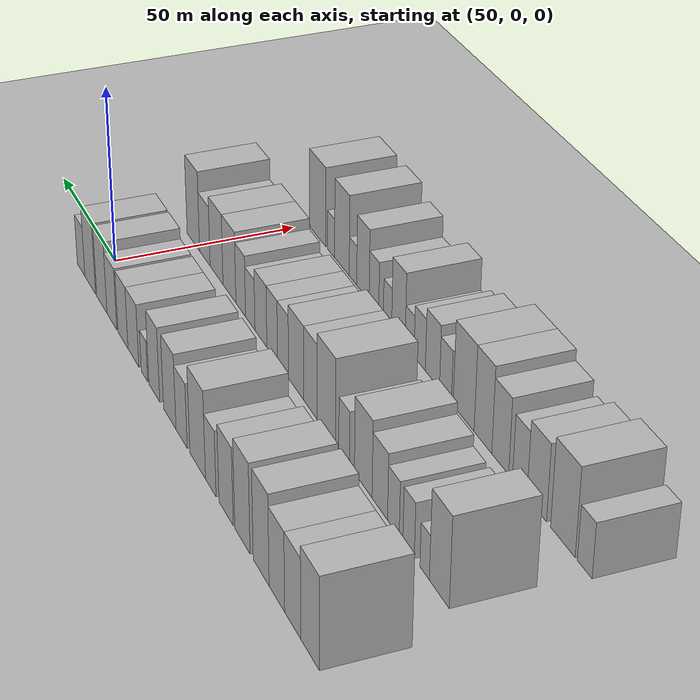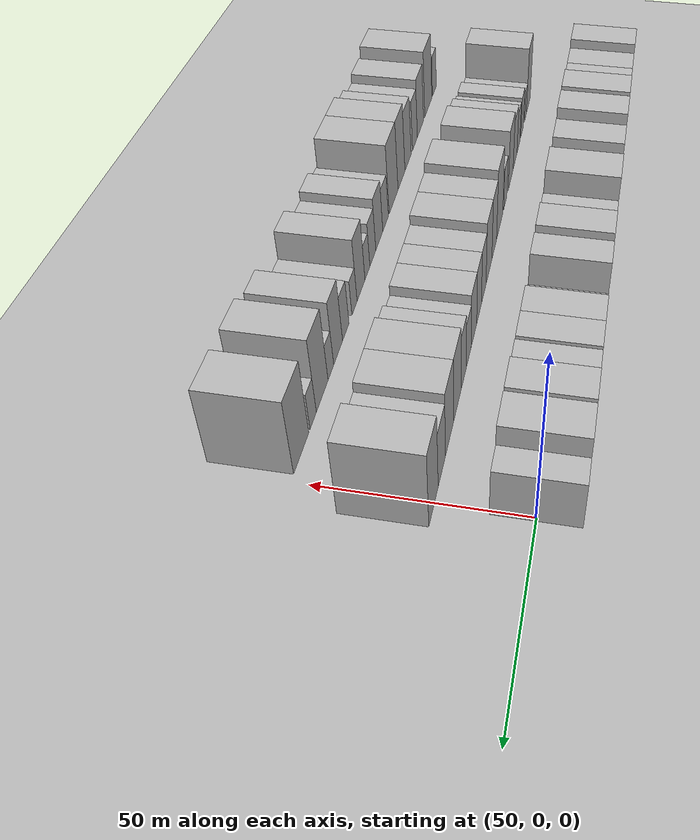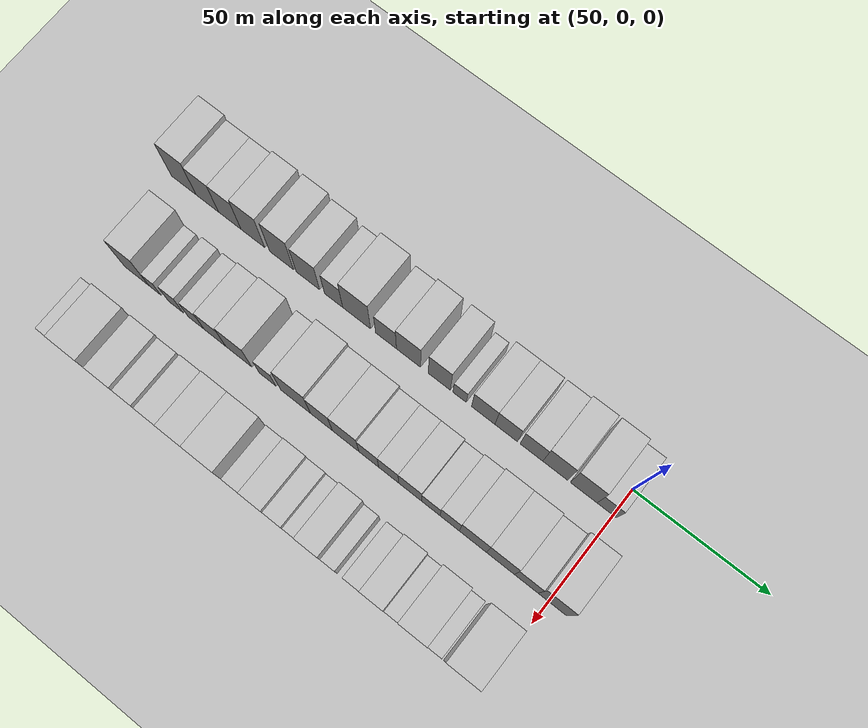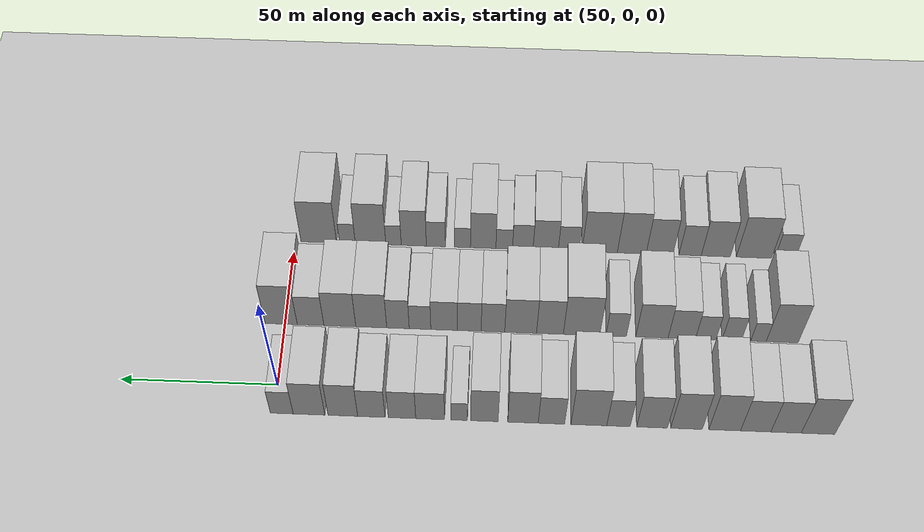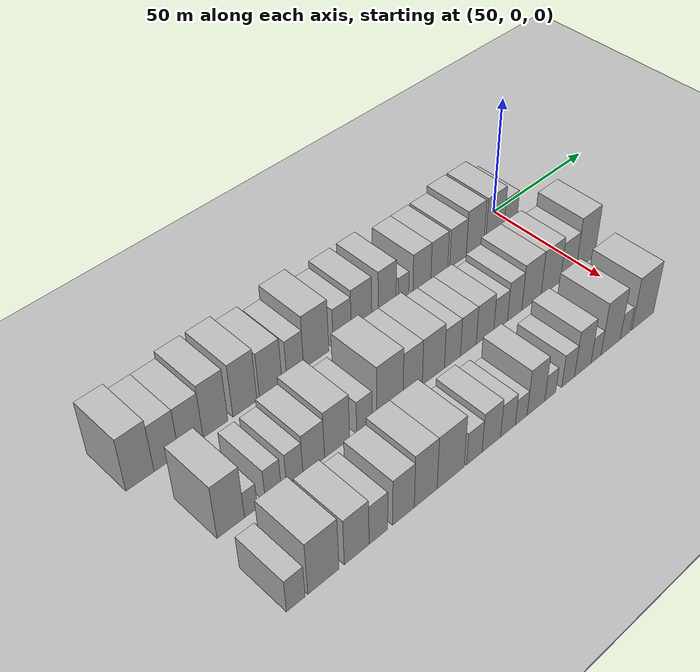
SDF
<sdf version="1.6">
 <world name="default">
  <include><name>ground_plane_1</name><uri>model://HANNAS_ground_plane</uri></include>
  <include>
   <name>ground_plane_2</name>
   <uri>model://HANNAS_ground_plane</uri>
   <pose>100 0 0  0 0 0</pose>
  </include>
  <model name="building_20">
   <static>1</static>
   <pose>50.0000 -168.9463 0 0.000000 0.000000 0.000000</pose>
   <link name="link">
    <pose>0 0 12.00 0 0 0</pose>
    <collision name="collision"><geometry><box><size>20.0000 10.3767 24.0000</size></box></geometry></collision>
    <visual name="visual">
     <cast_shadows>0</cast_shadows>
     <geometry><box><size>20.0000 10.3767 24.0000</size></box></geometry>
     <material>
      <script>
       <uri>model://HANNAS_wall/materials/scripts</uri>
       <uri>model://HANNAS_wall/materials/textures</uri>
       <name>vrc/HANNAS_wall</name>
      </script>
     </material>
    </visual>
   </link>
  </model>
  <model name="building_21">
   <static>1</static>
   <pose>50.0000 -159.0779 0 0.000000 0.000000 0.000000</pose>
   <link name="link">
    <pose>0 0 10.50 0 0 0</pose>
    <collision name="collision"><geometry><box><size>20.0000 9.3601 21.0000</size></box></geometry></collision>
    <visual name="visual">
     <cast_shadows>0</cast_shadows>
     <geometry><box><size>20.0000 9.3601 21.0000</size></box></geometry>
     <material>
      <script>
       <uri>model://HANNAS_wall/materials/scripts</uri>
       <uri>model://HANNAS_wall/materials/textures</uri>
       <name>vrc/HANNAS_wall</name>
      </script>
     </material>
    </visual>
   </link>
  </model>
  <model name="building_22">
   <static>1</static>
   <pose>50.0000 -149.7265 0 0.000000 0.000000 0.000000</pose>
   <link name="link">
    <pose>0 0 10.50 0 0 0</pose>
    <collision name="collision"><geometry><box><size>20.0000 9.3427 21.0000</size></box></geometry></collision>
    <visual name="visual">
     <cast_shadows>0</cast_shadows>
     <geometry><box><size>20.0000 9.3427 21.0000</size></box></geometry>
     <material>
      <script>
       <uri>model://HANNAS_wall/materials/scripts</uri>
       <uri>model://HANNAS_wall/materials/textures</uri>
       <name>vrc/HANNAS_wall</name>
      </script>
     </material>
    </visual>
   </link>
  </model>
  <model name="building_23">
   <static>1</static>
   <pose>50.0000 -140.1592 0 0.000000 0.000000 0.000000</pose>
   <link name="link">
    <pose>0 0 12.00 0 0 0</pose>
    <collision name="collision"><geometry><box><size>20.0000 9.7919 24.0000</size></box></geometry></collision>
    <visual name="visual">
     <cast_shadows>0</cast_shadows>
     <geometry><box><size>20.0000 9.7919 24.0000</size></box></geometry>
     <material>
      <script>
       <uri>model://HANNAS_wall/materials/scripts</uri>
       <uri>model://HANNAS_wall/materials/textures</uri>
       <name>vrc/HANNAS_wall</name>
      </script>
     </material>
    </visual>
   </link>
  </model>
  <model name="building_24">
   <static>1</static>
   <pose>50.0000 -128.3486 0 0.000000 0.000000 0.000000</pose>
   <link name="link">
    <pose>0 0 12.00 0 0 0</pose>
    <collision name="collision"><geometry><box><size>20.0000 9.8294 24.0000</size></box></geometry></collision>
    <visual name="visual">
     <cast_shadows>0</cast_shadows>
     <geometry><box><size>20.0000 9.8294 24.0000</size></box></geometry>
     <material>
      <script>
       <uri>model://HANNAS_wall/materials/scripts</uri>
       <uri>model://HANNAS_wall/materials/textures</uri>
       <name>vrc/HANNAS_wall</name>
      </script>
     </material>
    </visual>
   </link>
  </model>
  <model name="building_25">
   <static>1</static>
   <pose>50.0000 -117.6732 0 0.000000 0.000000 0.000000</pose>
   <link name="link">
    <pose>0 0 10.50 0 0 0</pose>
    <collision name="collision"><geometry><box><size>20.0000 9.5214 21.0000</size></box></geometry></collision>
    <visual name="visual">
     <cast_shadows>0</cast_shadows>
     <geometry><box><size>20.0000 9.5214 21.0000</size></box></geometry>
     <material>
      <script>
       <uri>model://HANNAS_wall/materials/scripts</uri>
       <uri>model://HANNAS_wall/materials/textures</uri>
       <name>vrc/HANNAS_wall</name>
      </script>
     </material>
    </visual>
   </link>
  </model>
  <model name="building_26">
   <static>1</static>
   <pose>50.0000 -107.2792 0 0.000000 0.000000 0.000000</pose>
   <link name="link">
    <pose>0 0 9.00 0 0 0</pose>
    <collision name="collision"><geometry><box><size>20.0000 7.2665 18.0000</size></box></geometry></collision>
    <visual name="visual">
     <cast_shadows>0</cast_shadows>
     <geometry><box><size>20.0000 7.2665 18.0000</size></box></geometry>
     <material>
      <script>
       <uri>model://HANNAS_wall/materials/scripts</uri>
       <uri>model://HANNAS_wall/materials/textures</uri>
       <name>vrc/HANNAS_wall</name>
      </script>
     </material>
    </visual>
   </link>
  </model>
  <model name="building_27">
   <static>1</static>
   <pose>50.0000 -98.1039 0 0.000000 0.000000 0.000000</pose>
   <link name="link">
    <pose>0 0 12.00 0 0 0</pose>
    <collision name="collision"><geometry><box><size>20.0000 11.0840 24.0000</size></box></geometry></collision>
    <visual name="visual">
     <cast_shadows>0</cast_shadows>
     <geometry><box><size>20.0000 11.0840 24.0000</size></box></geometry>
     <material>
      <script>
       <uri>model://HANNAS_wall/materials/scripts</uri>
       <uri>model://HANNAS_wall/materials/textures</uri>
       <name>vrc/HANNAS_wall</name>
      </script>
     </material>
    </visual>
   </link>
  </model>
  <model name="building_28">
   <static>1</static>
   <pose>50.0000 -86.4578 0 0.000000 0.000000 0.000000</pose>
   <link name="link">
    <pose>0 0 9.00 0 0 0</pose>
    <collision name="collision"><geometry><box><size>20.0000 8.2081 18.0000</size></box></geometry></collision>
    <visual name="visual">
     <cast_shadows>0</cast_shadows>
     <geometry><box><size>20.0000 8.2081 18.0000</size></box></geometry>
     <material>
      <script>
       <uri>model://HANNAS_wall/materials/scripts</uri>
       <uri>model://HANNAS_wall/materials/textures</uri>
       <name>vrc/HANNAS_wall</name>
      </script>
     </material>
    </visual>
   </link>
  </model>
  <model name="building_29">
   <static>1</static>
   <pose>50.0000 -77.6245 0 0.000000 0.000000 0.000000</pose>
   <link name="link">
    <pose>0 0 10.50 0 0 0</pose>
    <collision name="collision"><geometry><box><size>20.0000 9.4585 21.0000</size></box></geometry></collision>
    <visual name="visual">
     <cast_shadows>0</cast_shadows>
     <geometry><box><size>20.0000 9.4585 21.0000</size></box></geometry>
     <material>
      <script>
       <uri>model://HANNAS_wall/materials/scripts</uri>
       <uri>model://HANNAS_wall/materials/textures</uri>
       <name>vrc/HANNAS_wall</name>
      </script>
     </material>
    </visual>
   </link>
  </model>
  <model name="building_30">
   <static>1</static>
   <pose>50.0000 -65.6225 0 0.000000 0.000000 0.000000</pose>
   <link name="link">
    <pose>0 0 10.50 0 0 0</pose>
    <collision name="collision"><geometry><box><size>20.0000 8.5455 21.0000</size></box></geometry></collision>
    <visual name="visual">
     <cast_shadows>0</cast_shadows>
     <geometry><box><size>20.0000 8.5455 21.0000</size></box></geometry>
     <material>
      <script>
       <uri>model://HANNAS_wall/materials/scripts</uri>
       <uri>model://HANNAS_wall/materials/textures</uri>
       <name>vrc/HANNAS_wall</name>
      </script>
     </material>
    </visual>
   </link>
  </model>
  <model name="building_31">
   <static>1</static>
   <pose>50.0000 -57.7851 0 0.000000 0.000000 0.000000</pose>
   <link name="link">
    <pose>0 0 6.00 0 0 0</pose>
    <collision name="collision"><geometry><box><size>20.0000 5.1292 12.0000</size></box></geometry></collision>
    <visual name="visual">
     <cast_shadows>0</cast_shadows>
     <geometry><box><size>20.0000 5.1292 12.0000</size></box></geometry>
     <material>
      <script>
       <uri>model://HANNAS_wall/materials/scripts</uri>
       <uri>model://HANNAS_wall/materials/textures</uri>
       <name>vrc/HANNAS_wall</name>
      </script>
     </material>
    </visual>
   </link>
  </model>
  <model name="building_32">
   <static>1</static>
   <pose>50.0000 -48.7332 0 0.000000 0.000000 0.000000</pose>
   <link name="link">
    <pose>0 0 9.00 0 0 0</pose>
    <collision name="collision"><geometry><box><size>20.0000 8.9747 18.0000</size></box></geometry></collision>
    <visual name="visual">
     <cast_shadows>0</cast_shadows>
     <geometry><box><size>20.0000 8.9747 18.0000</size></box></geometry>
     <material>
      <script>
       <uri>model://HANNAS_wall/materials/scripts</uri>
       <uri>model://HANNAS_wall/materials/textures</uri>
       <name>vrc/HANNAS_wall</name>
      </script>
     </material>
    </visual>
   </link>
  </model>
  <model name="building_33">
   <static>1</static>
   <pose>50.0000 -39.9709 0 0.000000 0.000000 0.000000</pose>
   <link name="link">
    <pose>0 0 9.00 0 0 0</pose>
    <collision name="collision"><geometry><box><size>20.0000 8.5499 18.0000</size></box></geometry></collision>
    <visual name="visual">
     <cast_shadows>0</cast_shadows>
     <geometry><box><size>20.0000 8.5499 18.0000</size></box></geometry>
     <material>
      <script>
       <uri>model://HANNAS_wall/materials/scripts</uri>
       <uri>model://HANNAS_wall/materials/textures</uri>
       <name>vrc/HANNAS_wall</name>
      </script>
     </material>
    </visual>
   </link>
  </model>
  <model name="building_34">
   <static>1</static>
   <pose>50.0000 -30.4042 0 0.000000 0.000000 0.000000</pose>
   <link name="link">
    <pose>0 0 9.00 0 0 0</pose>
    <collision name="collision"><geometry><box><size>20.0000 8.5835 18.0000</size></box></geometry></collision>
    <visual name="visual">
     <cast_shadows>0</cast_shadows>
     <geometry><box><size>20.0000 8.5835 18.0000</size></box></geometry>
     <material>
      <script>
       <uri>model://HANNAS_wall/materials/scripts</uri>
       <uri>model://HANNAS_wall/materials/textures</uri>
       <name>vrc/HANNAS_wall</name>
      </script>
     </material>
    </visual>
   </link>
  </model>
  <model name="building_35">
   <static>1</static>
   <pose>50.0000 -21.4919 0 0.000000 0.000000 0.000000</pose>
   <link name="link">
    <pose>0 0 10.50 0 0 0</pose>
    <collision name="collision"><geometry><box><size>20.0000 9.2410 21.0000</size></box></geometry></collision>
    <visual name="visual">
     <cast_shadows>0</cast_shadows>
     <geometry><box><size>20.0000 9.2410 21.0000</size></box></geometry>
     <material>
      <script>
       <uri>model://HANNAS_wall/materials/scripts</uri>
       <uri>model://HANNAS_wall/materials/textures</uri>
       <name>vrc/HANNAS_wall</name>
      </script>
     </material>
    </visual>
   </link>
  </model>
  <model name="building_36">
   <static>1</static>
   <pose>50.0000 -10.9206 0 0.000000 0.000000 0.000000</pose>
   <link name="link">
    <pose>0 0 10.50 0 0 0</pose>
    <collision name="collision"><geometry><box><size>20.0000 9.9016 21.0000</size></box></geometry></collision>
    <visual name="visual">
     <cast_shadows>0</cast_shadows>
     <geometry><box><size>20.0000 9.9016 21.0000</size></box></geometry>
     <material>
      <script>
       <uri>model://HANNAS_wall/materials/scripts</uri>
       <uri>model://HANNAS_wall/materials/textures</uri>
       <name>vrc/HANNAS_wall</name>
      </script>
     </material>
    </visual>
   </link>
  </model>
  <model name="building_37">
   <static>1</static>
   <pose>50.0000 -2.4017 0 0.000000 0.000000 0.000000</pose>
   <link name="link">
    <pose>0 0 7.50 0 0 0</pose>
    <collision name="collision"><geometry><box><size>20.0000 7.1364 15.0000</size></box></geometry></collision>
    <visual name="visual">
     <cast_shadows>0</cast_shadows>
     <geometry><box><size>20.0000 7.1364 15.0000</size></box></geometry>
     <material>
      <script>
       <uri>model://HANNAS_wall/materials/scripts</uri>
       <uri>model://HANNAS_wall/materials/textures</uri>
       <name>vrc/HANNAS_wall</name>
      </script>
     </material>
    </visual>
   </link>
  </model>
  <model name="building_96">
   <static>1</static>
   <pose>82.0000 -160.4368 0 0.000000 0.000000 0.000000</pose>
   <link name="link">
    <pose>0 0 12.00 0 0 0</pose>
    <collision name="collision"><geometry><box><size>20.0000 10.2130 24.0000</size></box></geometry></collision>
    <visual name="visual">
     <cast_shadows>0</cast_shadows>
     <geometry><box><size>20.0000 10.2130 24.0000</size></box></geometry>
     <material>
      <script>
       <uri>model://HANNAS_wall/materials/scripts</uri>
       <uri>model://HANNAS_wall/materials/textures</uri>
       <name>vrc/HANNAS_wall</name>
      </script>
     </material>
    </visual>
   </link>
  </model>
  <model name="building_97">
   <static>1</static>
   <pose>82.0000 -152.8462 0 0.000000 0.000000 0.000000</pose>
   <link name="link">
    <pose>0 0 6.00 0 0 0</pose>
    <collision name="collision"><geometry><box><size>20.0000 4.9683 12.0000</size></box></geometry></collision>
    <visual name="visual">
     <cast_shadows>0</cast_shadows>
     <geometry><box><size>20.0000 4.9683 12.0000</size></box></geometry>
     <material>
      <script>
       <uri>model://HANNAS_wall/materials/scripts</uri>
       <uri>model://HANNAS_wall/materials/textures</uri>
       <name>vrc/HANNAS_wall</name>
      </script>
     </material>
    </visual>
   </link>
  </model>
  <model name="building_98">
   <static>1</static>
   <pose>82.0000 -144.2626 0 0.000000 0.000000 0.000000</pose>
   <link name="link">
    <pose>0 0 7.50 0 0 0</pose>
    <collision name="collision"><geometry><box><size>20.0000 6.1988 15.0000</size></box></geometry></collision>
    <visual name="visual">
     <cast_shadows>0</cast_shadows>
     <geometry><box><size>20.0000 6.1988 15.0000</size></box></geometry>
     <material>
      <script>
       <uri>model://HANNAS_wall/materials/scripts</uri>
       <uri>model://HANNAS_wall/materials/textures</uri>
       <name>vrc/HANNAS_wall</name>
      </script>
     </material>
    </visual>
   </link>
  </model>
  <model name="building_99">
   <static>1</static>
   <pose>82.0000 -135.8940 0 0.000000 0.000000 0.000000</pose>
   <link name="link">
    <pose>0 0 7.50 0 0 0</pose>
    <collision name="collision"><geometry><box><size>20.0000 6.5384 15.0000</size></box></geometry></collision>
    <visual name="visual">
     <cast_shadows>0</cast_shadows>
     <geometry><box><size>20.0000 6.5384 15.0000</size></box></geometry>
     <material>
      <script>
       <uri>model://HANNAS_wall/materials/scripts</uri>
       <uri>model://HANNAS_wall/materials/textures</uri>
       <name>vrc/HANNAS_wall</name>
      </script>
     </material>
    </visual>
   </link>
  </model>
  <model name="building_100">
   <static>1</static>
   <pose>82.0000 -128.2202 0 0.000000 0.000000 0.000000</pose>
   <link name="link">
    <pose>0 0 9.00 0 0 0</pose>
    <collision name="collision"><geometry><box><size>20.0000 8.8092 18.0000</size></box></geometry></collision>
    <visual name="visual">
     <cast_shadows>0</cast_shadows>
     <geometry><box><size>20.0000 8.8092 18.0000</size></box></geometry>
     <material>
      <script>
       <uri>model://HANNAS_wall/materials/scripts</uri>
       <uri>model://HANNAS_wall/materials/textures</uri>
       <name>vrc/HANNAS_wall</name>
      </script>
     </material>
    </visual>
   </link>
  </model>
  <model name="building_101">
   <static>1</static>
   <pose>82.0000 -118.6118 0 0.000000 0.000000 0.000000</pose>
   <link name="link">
    <pose>0 0 10.50 0 0 0</pose>
    <collision name="collision"><geometry><box><size>20.0000 10.4074 21.0000</size></box></geometry></collision>
    <visual name="visual">
     <cast_shadows>0</cast_shadows>
     <geometry><box><size>20.0000 10.4074 21.0000</size></box></geometry>
     <material>
      <script>
       <uri>model://HANNAS_wall/materials/scripts</uri>
       <uri>model://HANNAS_wall/materials/textures</uri>
       <name>vrc/HANNAS_wall</name>
      </script>
     </material>
    </visual>
   </link>
  </model>
  <model name="building_102">
   <static>1</static>
   <pose>82.0000 -107.1139 0 0.000000 0.000000 0.000000</pose>
   <link name="link">
    <pose>0 0 7.50 0 0 0</pose>
    <collision name="collision"><geometry><box><size>20.0000 6.5884 15.0000</size></box></geometry></collision>
    <visual name="visual">
     <cast_shadows>0</cast_shadows>
     <geometry><box><size>20.0000 6.5884 15.0000</size></box></geometry>
     <material>
      <script>
       <uri>model://HANNAS_wall/materials/scripts</uri>
       <uri>model://HANNAS_wall/materials/textures</uri>
       <name>vrc/HANNAS_wall</name>
      </script>
     </material>
    </visual>
   </link>
  </model>
  <model name="building_103">
   <static>1</static>
   <pose>82.0000 -95.9659 0 0.000000 0.000000 0.000000</pose>
   <link name="link">
    <pose>0 0 12.00 0 0 0</pose>
    <collision name="collision"><geometry><box><size>20.0000 11.7077 24.0000</size></box></geometry></collision>
    <visual name="visual">
     <cast_shadows>0</cast_shadows>
     <geometry><box><size>20.0000 11.7077 24.0000</size></box></geometry>
     <material>
      <script>
       <uri>model://HANNAS_wall/materials/scripts</uri>
       <uri>model://HANNAS_wall/materials/textures</uri>
       <name>vrc/HANNAS_wall</name>
      </script>
     </material>
    </visual>
   </link>
  </model>
  <model name="building_104">
   <static>1</static>
   <pose>82.0000 -85.7758 0 0.000000 0.000000 0.000000</pose>
   <link name="link">
    <pose>0 0 10.50 0 0 0</pose>
    <collision name="collision"><geometry><box><size>20.0000 8.6725 21.0000</size></box></geometry></collision>
    <visual name="visual">
     <cast_shadows>0</cast_shadows>
     <geometry><box><size>20.0000 8.6725 21.0000</size></box></geometry>
     <material>
      <script>
       <uri>model://HANNAS_wall/materials/scripts</uri>
       <uri>model://HANNAS_wall/materials/textures</uri>
       <name>vrc/HANNAS_wall</name>
      </script>
     </material>
    </visual>
   </link>
  </model>
  <model name="building_105">
   <static>1</static>
   <pose>82.0000 -76.3081 0 0.000000 0.000000 0.000000</pose>
   <link name="link">
    <pose>0 0 10.50 0 0 0</pose>
    <collision name="collision"><geometry><box><size>20.0000 10.2629 21.0000</size></box></geometry></collision>
    <visual name="visual">
     <cast_shadows>0</cast_shadows>
     <geometry><box><size>20.0000 10.2629 21.0000</size></box></geometry>
     <material>
      <script>
       <uri>model://HANNAS_wall/materials/scripts</uri>
       <uri>model://HANNAS_wall/materials/textures</uri>
       <name>vrc/HANNAS_wall</name>
      </script>
     </material>
    </visual>
   </link>
  </model>
  <model name="building_106">
   <static>1</static>
   <pose>82.0000 -67.3694 0 0.000000 0.000000 0.000000</pose>
   <link name="link">
    <pose>0 0 9.00 0 0 0</pose>
    <collision name="collision"><geometry><box><size>20.0000 7.6144 18.0000</size></box></geometry></collision>
    <visual name="visual">
     <cast_shadows>0</cast_shadows>
     <geometry><box><size>20.0000 7.6144 18.0000</size></box></geometry>
     <material>
      <script>
       <uri>model://HANNAS_wall/materials/scripts</uri>
       <uri>model://HANNAS_wall/materials/textures</uri>
       <name>vrc/HANNAS_wall</name>
      </script>
     </material>
    </visual>
   </link>
  </model>
  <model name="building_107">
   <static>1</static>
   <pose>82.0000 -59.7452 0 0.000000 0.000000 0.000000</pose>
   <link name="link">
    <pose>0 0 9.00 0 0 0</pose>
    <collision name="collision"><geometry><box><size>20.0000 7.6341 18.0000</size></box></geometry></collision>
    <visual name="visual">
     <cast_shadows>0</cast_shadows>
     <geometry><box><size>20.0000 7.6341 18.0000</size></box></geometry>
     <material>
      <script>
       <uri>model://HANNAS_wall/materials/scripts</uri>
       <uri>model://HANNAS_wall/materials/textures</uri>
       <name>vrc/HANNAS_wall</name>
      </script>
     </material>
    </visual>
   </link>
  </model>
  <model name="building_108">
   <static>1</static>
   <pose>82.0000 -51.6048 0 0.000000 0.000000 0.000000</pose>
   <link name="link">
    <pose>0 0 9.00 0 0 0</pose>
    <collision name="collision"><geometry><box><size>20.0000 8.6466 18.0000</size></box></geometry></collision>
    <visual name="visual">
     <cast_shadows>0</cast_shadows>
     <geometry><box><size>20.0000 8.6466 18.0000</size></box></geometry>
     <material>
      <script>
       <uri>model://HANNAS_wall/materials/scripts</uri>
       <uri>model://HANNAS_wall/materials/textures</uri>
       <name>vrc/HANNAS_wall</name>
      </script>
     </material>
    </visual>
   </link>
  </model>
  <model name="building_109">
   <static>1</static>
   <pose>82.0000 -43.7834 0 0.000000 0.000000 0.000000</pose>
   <link name="link">
    <pose>0 0 7.50 0 0 0</pose>
    <collision name="collision"><geometry><box><size>20.0000 6.9962 15.0000</size></box></geometry></collision>
    <visual name="visual">
     <cast_shadows>0</cast_shadows>
     <geometry><box><size>20.0000 6.9962 15.0000</size></box></geometry>
     <material>
      <script>
       <uri>model://HANNAS_wall/materials/scripts</uri>
       <uri>model://HANNAS_wall/materials/textures</uri>
       <name>vrc/HANNAS_wall</name>
      </script>
     </material>
    </visual>
   </link>
  </model>
  <model name="building_110">
   <static>1</static>
   <pose>82.0000 -36.6419 0 0.000000 0.000000 0.000000</pose>
   <link name="link">
    <pose>0 0 9.00 0 0 0</pose>
    <collision name="collision"><geometry><box><size>20.0000 7.2868 18.0000</size></box></geometry></collision>
    <visual name="visual">
     <cast_shadows>0</cast_shadows>
     <geometry><box><size>20.0000 7.2868 18.0000</size></box></geometry>
     <material>
      <script>
       <uri>model://HANNAS_wall/materials/scripts</uri>
       <uri>model://HANNAS_wall/materials/textures</uri>
       <name>vrc/HANNAS_wall</name>
      </script>
     </material>
    </visual>
   </link>
  </model>
  <model name="building_111">
   <static>1</static>
   <pose>82.0000 -27.9829 0 0.000000 0.000000 0.000000</pose>
   <link name="link">
    <pose>0 0 10.50 0 0 0</pose>
    <collision name="collision"><geometry><box><size>20.0000 10.0311 21.0000</size></box></geometry></collision>
    <visual name="visual">
     <cast_shadows>0</cast_shadows>
     <geometry><box><size>20.0000 10.0311 21.0000</size></box></geometry>
     <material>
      <script>
       <uri>model://HANNAS_wall/materials/scripts</uri>
       <uri>model://HANNAS_wall/materials/textures</uri>
       <name>vrc/HANNAS_wall</name>
      </script>
     </material>
    </visual>
   </link>
  </model>
  <model name="building_112">
   <static>1</static>
   <pose>82.0000 -17.7882 0 0.000000 0.000000 0.000000</pose>
   <link name="link">
    <pose>0 0 10.50 0 0 0</pose>
    <collision name="collision"><geometry><box><size>20.0000 10.3584 21.0000</size></box></geometry></collision>
    <visual name="visual">
     <cast_shadows>0</cast_shadows>
     <geometry><box><size>20.0000 10.3584 21.0000</size></box></geometry>
     <material>
      <script>
       <uri>model://HANNAS_wall/materials/scripts</uri>
       <uri>model://HANNAS_wall/materials/textures</uri>
       <name>vrc/HANNAS_wall</name>
      </script>
     </material>
    </visual>
   </link>
  </model>
  <model name="building_113">
   <static>1</static>
   <pose>82.0000 -8.2846 0 0.000000 0.000000 0.000000</pose>
   <link name="link">
    <pose>0 0 9.00 0 0 0</pose>
    <collision name="collision"><geometry><box><size>20.0000 8.6489 18.0000</size></box></geometry></collision>
    <visual name="visual">
     <cast_shadows>0</cast_shadows>
     <geometry><box><size>20.0000 8.6489 18.0000</size></box></geometry>
     <material>
      <script>
       <uri>model://HANNAS_wall/materials/scripts</uri>
       <uri>model://HANNAS_wall/materials/textures</uri>
       <name>vrc/HANNAS_wall</name>
      </script>
     </material>
    </visual>
   </link>
  </model>
  <model name="building_114">
   <static>1</static>
   <pose>82.0000 1.2791 0 0.000000 0.000000 0.000000</pose>
   <link name="link">
    <pose>0 0 12.00 0 0 0</pose>
    <collision name="collision"><geometry><box><size>20.0000 10.4783 24.0000</size></box></geometry></collision>
    <visual name="visual">
     <cast_shadows>0</cast_shadows>
     <geometry><box><size>20.0000 10.4783 24.0000</size></box></geometry>
     <material>
      <script>
       <uri>model://HANNAS_wall/materials/scripts</uri>
       <uri>model://HANNAS_wall/materials/textures</uri>
       <name>vrc/HANNAS_wall</name>
      </script>
     </material>
    </visual>
   </link>
  </model>
  <model name="building_168">
   <static>1</static>
   <pose>114.0000 -163.8801 0 0.000000 0.000000 0.000000</pose>
   <link name="link">
    <pose>0 0 7.50 0 0 0</pose>
    <collision name="collision"><geometry><box><size>20.0000 6.8053 15.0000</size></box></geometry></collision>
    <visual name="visual">
     <cast_shadows>0</cast_shadows>
     <geometry><box><size>20.0000 6.8053 15.0000</size></box></geometry>
     <material>
      <script>
       <uri>model://HANNAS_wall/materials/scripts</uri>
       <uri>model://HANNAS_wall/materials/textures</uri>
       <name>vrc/HANNAS_wall</name>
      </script>
     </material>
    </visual>
   </link>
  </model>
  <model name="building_169">
   <static>1</static>
   <pose>114.0000 -153.6069 0 0.000000 0.000000 0.000000</pose>
   <link name="link">
    <pose>0 0 12.00 0 0 0</pose>
    <collision name="collision"><geometry><box><size>20.0000 11.7410 24.0000</size></box></geometry></collision>
    <visual name="visual">
     <cast_shadows>0</cast_shadows>
     <geometry><box><size>20.0000 11.7410 24.0000</size></box></geometry>
     <material>
      <script>
       <uri>model://HANNAS_wall/materials/scripts</uri>
       <uri>model://HANNAS_wall/materials/textures</uri>
       <name>vrc/HANNAS_wall</name>
      </script>
     </material>
    </visual>
   </link>
  </model>
  <model name="building_170">
   <static>1</static>
   <pose>114.0000 -140.8920 0 0.000000 0.000000 0.000000</pose>
   <link name="link">
    <pose>0 0 10.50 0 0 0</pose>
    <collision name="collision"><geometry><box><size>20.0000 9.6889 21.0000</size></box></geometry></collision>
    <visual name="visual">
     <cast_shadows>0</cast_shadows>
     <geometry><box><size>20.0000 9.6889 21.0000</size></box></geometry>
     <material>
      <script>
       <uri>model://HANNAS_wall/materials/scripts</uri>
       <uri>model://HANNAS_wall/materials/textures</uri>
       <name>vrc/HANNAS_wall</name>
      </script>
     </material>
    </visual>
   </link>
  </model>
  <model name="building_171">
   <static>1</static>
   <pose>114.0000 -132.3316 0 0.000000 0.000000 0.000000</pose>
   <link name="link">
    <pose>0 0 9.00 0 0 0</pose>
    <collision name="collision"><geometry><box><size>20.0000 7.4318 18.0000</size></box></geometry></collision>
    <visual name="visual">
     <cast_shadows>0</cast_shadows>
     <geometry><box><size>20.0000 7.4318 18.0000</size></box></geometry>
     <material>
      <script>
       <uri>model://HANNAS_wall/materials/scripts</uri>
       <uri>model://HANNAS_wall/materials/textures</uri>
       <name>vrc/HANNAS_wall</name>
      </script>
     </material>
    </visual>
   </link>
  </model>
  <model name="building_172">
   <static>1</static>
   <pose>114.0000 -122.1465 0 0.000000 0.000000 0.000000</pose>
   <link name="link">
    <pose>0 0 10.50 0 0 0</pose>
    <collision name="collision"><geometry><box><size>20.0000 8.9383 21.0000</size></box></geometry></collision>
    <visual name="visual">
     <cast_shadows>0</cast_shadows>
     <geometry><box><size>20.0000 8.9383 21.0000</size></box></geometry>
     <material>
      <script>
       <uri>model://HANNAS_wall/materials/scripts</uri>
       <uri>model://HANNAS_wall/materials/textures</uri>
       <name>vrc/HANNAS_wall</name>
      </script>
     </material>
    </visual>
   </link>
  </model>
  <model name="building_173">
   <static>1</static>
   <pose>114.0000 -112.8626 0 0.000000 0.000000 0.000000</pose>
   <link name="link">
    <pose>0 0 12.00 0 0 0</pose>
    <collision name="collision"><geometry><box><size>20.0000 9.6297 24.0000</size></box></geometry></collision>
    <visual name="visual">
     <cast_shadows>0</cast_shadows>
     <geometry><box><size>20.0000 9.6297 24.0000</size></box></geometry>
     <material>
      <script>
       <uri>model://HANNAS_wall/materials/scripts</uri>
       <uri>model://HANNAS_wall/materials/textures</uri>
       <name>vrc/HANNAS_wall</name>
      </script>
     </material>
    </visual>
   </link>
  </model>
  <model name="building_174">
   <static>1</static>
   <pose>114.0000 -102.1430 0 0.000000 0.000000 0.000000</pose>
   <link name="link">
    <pose>0 0 12.00 0 0 0</pose>
    <collision name="collision"><geometry><box><size>20.0000 11.8095 24.0000</size></box></geometry></collision>
    <visual name="visual">
     <cast_shadows>0</cast_shadows>
     <geometry><box><size>20.0000 11.8095 24.0000</size></box></geometry>
     <material>
      <script>
       <uri>model://HANNAS_wall/materials/scripts</uri>
       <uri>model://HANNAS_wall/materials/textures</uri>
       <name>vrc/HANNAS_wall</name>
      </script>
     </material>
    </visual>
   </link>
  </model>
  <model name="building_175">
   <static>1</static>
   <pose>114.0000 -91.7664 0 0.000000 0.000000 0.000000</pose>
   <link name="link">
    <pose>0 0 7.50 0 0 0</pose>
    <collision name="collision"><geometry><box><size>20.0000 6.9436 15.0000</size></box></geometry></collision>
    <visual name="visual">
     <cast_shadows>0</cast_shadows>
     <geometry><box><size>20.0000 6.9436 15.0000</size></box></geometry>
     <material>
      <script>
       <uri>model://HANNAS_wall/materials/scripts</uri>
       <uri>model://HANNAS_wall/materials/textures</uri>
       <name>vrc/HANNAS_wall</name>
      </script>
     </material>
    </visual>
   </link>
  </model>
  <model name="building_176">
   <static>1</static>
   <pose>114.0000 -84.0810 0 0.000000 0.000000 0.000000</pose>
   <link name="link">
    <pose>0 0 9.00 0 0 0</pose>
    <collision name="collision"><geometry><box><size>20.0000 8.4273 18.0000</size></box></geometry></collision>
    <visual name="visual">
     <cast_shadows>0</cast_shadows>
     <geometry><box><size>20.0000 8.4273 18.0000</size></box></geometry>
     <material>
      <script>
       <uri>model://HANNAS_wall/materials/scripts</uri>
       <uri>model://HANNAS_wall/materials/textures</uri>
       <name>vrc/HANNAS_wall</name>
      </script>
     </material>
    </visual>
   </link>
  </model>
  <model name="building_177">
   <static>1</static>
   <pose>114.0000 -76.4257 0 0.000000 0.000000 0.000000</pose>
   <link name="link">
    <pose>0 0 7.50 0 0 0</pose>
    <collision name="collision"><geometry><box><size>20.0000 6.8834 15.0000</size></box></geometry></collision>
    <visual name="visual">
     <cast_shadows>0</cast_shadows>
     <geometry><box><size>20.0000 6.8834 15.0000</size></box></geometry>
     <material>
      <script>
       <uri>model://HANNAS_wall/materials/scripts</uri>
       <uri>model://HANNAS_wall/materials/textures</uri>
       <name>vrc/HANNAS_wall</name>
      </script>
     </material>
    </visual>
   </link>
  </model>
  <model name="building_178">
   <static>1</static>
   <pose>114.0000 -70.2101 0 0.000000 0.000000 0.000000</pose>
   <link name="link">
    <pose>0 0 6.00 0 0 0</pose>
    <collision name="collision"><geometry><box><size>20.0000 5.5478 12.0000</size></box></geometry></collision>
    <visual name="visual">
     <cast_shadows>0</cast_shadows>
     <geometry><box><size>20.0000 5.5478 12.0000</size></box></geometry>
     <material>
      <script>
       <uri>model://HANNAS_wall/materials/scripts</uri>
       <uri>model://HANNAS_wall/materials/textures</uri>
       <name>vrc/HANNAS_wall</name>
      </script>
     </material>
    </visual>
   </link>
  </model>
  <model name="building_179">
   <static>1</static>
   <pose>114.0000 -63.1662 0 0.000000 0.000000 0.000000</pose>
   <link name="link">
    <pose>0 0 10.50 0 0 0</pose>
    <collision name="collision"><geometry><box><size>20.0000 8.5400 21.0000</size></box></geometry></collision>
    <visual name="visual">
     <cast_shadows>0</cast_shadows>
     <geometry><box><size>20.0000 8.5400 21.0000</size></box></geometry>
     <material>
      <script>
       <uri>model://HANNAS_wall/materials/scripts</uri>
       <uri>model://HANNAS_wall/materials/textures</uri>
       <name>vrc/HANNAS_wall</name>
      </script>
     </material>
    </visual>
   </link>
  </model>
  <model name="building_180">
   <static>1</static>
   <pose>114.0000 -56.1976 0 0.000000 0.000000 0.000000</pose>
   <link name="link">
    <pose>0 0 6.00 0 0 0</pose>
    <collision name="collision"><geometry><box><size>20.0000 5.3972 12.0000</size></box></geometry></collision>
    <visual name="visual">
     <cast_shadows>0</cast_shadows>
     <geometry><box><size>20.0000 5.3972 12.0000</size></box></geometry>
     <material>
      <script>
       <uri>model://HANNAS_wall/materials/scripts</uri>
       <uri>model://HANNAS_wall/materials/textures</uri>
       <name>vrc/HANNAS_wall</name>
      </script>
     </material>
    </visual>
   </link>
  </model>
  <model name="building_181">
   <static>1</static>
   <pose>114.0000 -47.3046 0 0.000000 0.000000 0.000000</pose>
   <link name="link">
    <pose>0 0 7.50 0 0 0</pose>
    <collision name="collision"><geometry><box><size>20.0000 6.3889 15.0000</size></box></geometry></collision>
    <visual name="visual">
     <cast_shadows>0</cast_shadows>
     <geometry><box><size>20.0000 6.3889 15.0000</size></box></geometry>
     <material>
      <script>
       <uri>model://HANNAS_wall/materials/scripts</uri>
       <uri>model://HANNAS_wall/materials/textures</uri>
       <name>vrc/HANNAS_wall</name>
      </script>
     </material>
    </visual>
   </link>
  </model>
  <model name="building_182">
   <static>1</static>
   <pose>114.0000 -39.8932 0 0.000000 0.000000 0.000000</pose>
   <link name="link">
    <pose>0 0 10.50 0 0 0</pose>
    <collision name="collision"><geometry><box><size>20.0000 8.4339 21.0000</size></box></geometry></collision>
    <visual name="visual">
     <cast_shadows>0</cast_shadows>
     <geometry><box><size>20.0000 8.4339 21.0000</size></box></geometry>
     <material>
      <script>
       <uri>model://HANNAS_wall/materials/scripts</uri>
       <uri>model://HANNAS_wall/materials/textures</uri>
       <name>vrc/HANNAS_wall</name>
      </script>
     </material>
    </visual>
   </link>
  </model>
  <model name="building_183">
   <static>1</static>
   <pose>114.0000 -33.0834 0 0.000000 0.000000 0.000000</pose>
   <link name="link">
    <pose>0 0 6.00 0 0 0</pose>
    <collision name="collision"><geometry><box><size>20.0000 5.1857 12.0000</size></box></geometry></collision>
    <visual name="visual">
     <cast_shadows>0</cast_shadows>
     <geometry><box><size>20.0000 5.1857 12.0000</size></box></geometry>
     <material>
      <script>
       <uri>model://HANNAS_wall/materials/scripts</uri>
       <uri>model://HANNAS_wall/materials/textures</uri>
       <name>vrc/HANNAS_wall</name>
      </script>
     </material>
    </visual>
   </link>
  </model>
  <model name="building_184">
   <static>1</static>
   <pose>114.0000 -25.3517 0 0.000000 0.000000 0.000000</pose>
   <link name="link">
    <pose>0 0 12.00 0 0 0</pose>
    <collision name="collision"><geometry><box><size>20.0000 10.2777 24.0000</size></box></geometry></collision>
    <visual name="visual">
     <cast_shadows>0</cast_shadows>
     <geometry><box><size>20.0000 10.2777 24.0000</size></box></geometry>
     <material>
      <script>
       <uri>model://HANNAS_wall/materials/scripts</uri>
       <uri>model://HANNAS_wall/materials/textures</uri>
       <name>vrc/HANNAS_wall</name>
      </script>
     </material>
    </visual>
   </link>
  </model>
  <model name="building_185">
   <static>1</static>
   <pose>114.0000 -17.5653 0 0.000000 0.000000 0.000000</pose>
   <link name="link">
    <pose>0 0 6.00 0 0 0</pose>
    <collision name="collision"><geometry><box><size>20.0000 5.2952 12.0000</size></box></geometry></collision>
    <visual name="visual">
     <cast_shadows>0</cast_shadows>
     <geometry><box><size>20.0000 5.2952 12.0000</size></box></geometry>
     <material>
      <script>
       <uri>model://HANNAS_wall/materials/scripts</uri>
       <uri>model://HANNAS_wall/materials/textures</uri>
       <name>vrc/HANNAS_wall</name>
      </script>
     </material>
    </visual>
   </link>
  </model>
  <model name="building_186">
   <static>1</static>
   <pose>114.0000 -7.9180 0 0.000000 0.000000 0.000000</pose>
   <link name="link">
    <pose>0 0 12.00 0 0 0</pose>
    <collision name="collision"><geometry><box><size>20.0000 11.9994 24.0000</size></box></geometry></collision>
    <visual name="visual">
     <cast_shadows>0</cast_shadows>
     <geometry><box><size>20.0000 11.9994 24.0000</size></box></geometry>
     <material>
      <script>
       <uri>model://HANNAS_wall/materials/scripts</uri>
       <uri>model://HANNAS_wall/materials/textures</uri>
       <name>vrc/HANNAS_wall</name>
      </script>
     </material>
    </visual>
   </link>
  </model>
 </world>
</sdf>
